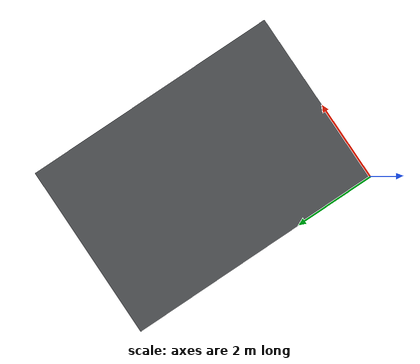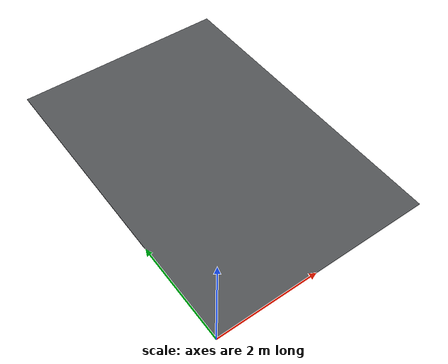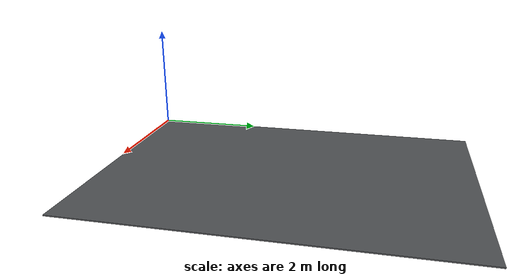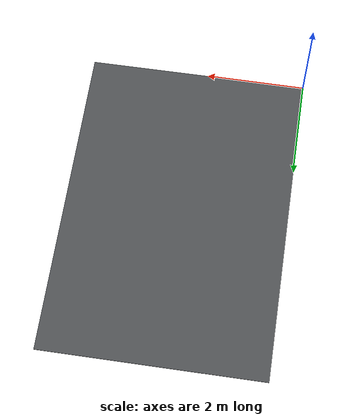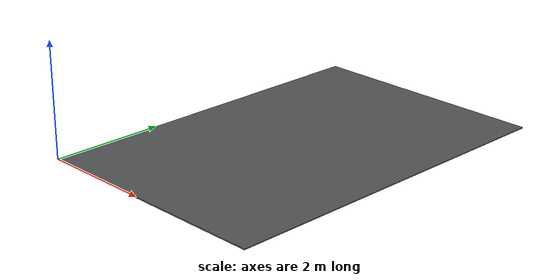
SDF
<sdf version="1.7">
 <world name="empty">
  <model name="lab_floor">
   <static>true</static>
   <pose>2.2 3.2 -0.01 0 0 0</pose>
   <link name="floor_link">
    <collision name="floor_collision"><geometry><box><size>4.4 6.4 0.02</size></box></geometry></collision>
    <visual name="floor_visual">
     <geometry><box><size>4.4 6.4 0.02</size></box></geometry>
     <material>
      <ambient>0.28 0.29 0.30 1</ambient>
      <diffuse>0.32 0.33 0.34 1</diffuse>
      <specular>0.15 0.15 0.15 1</specular>
     </material>
    </visual>
   </link>
  </model>
 </world>
</sdf>
